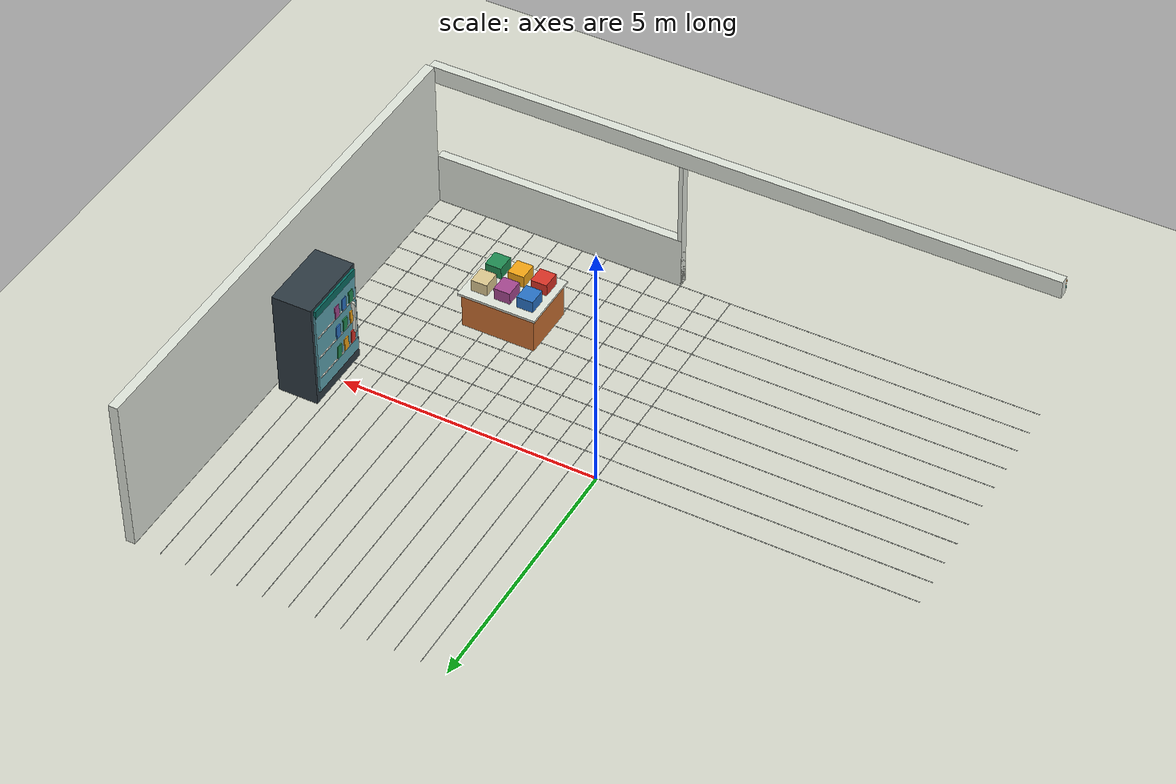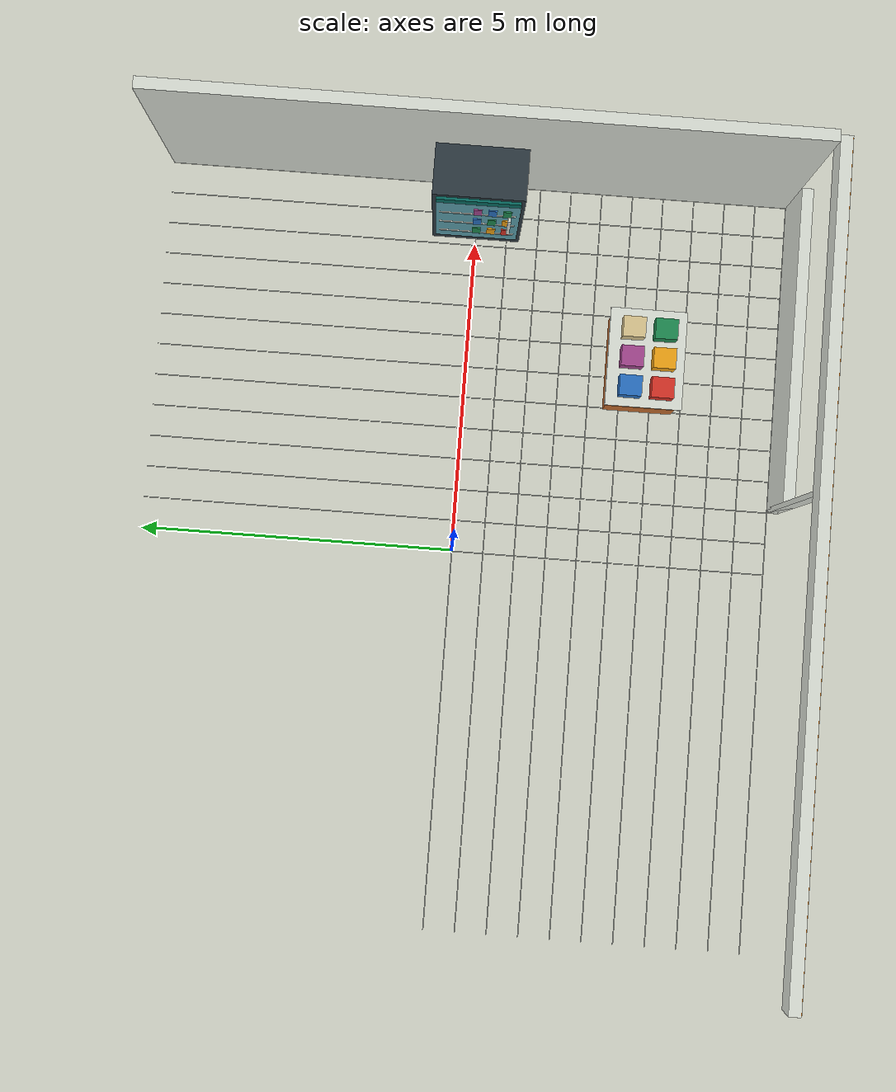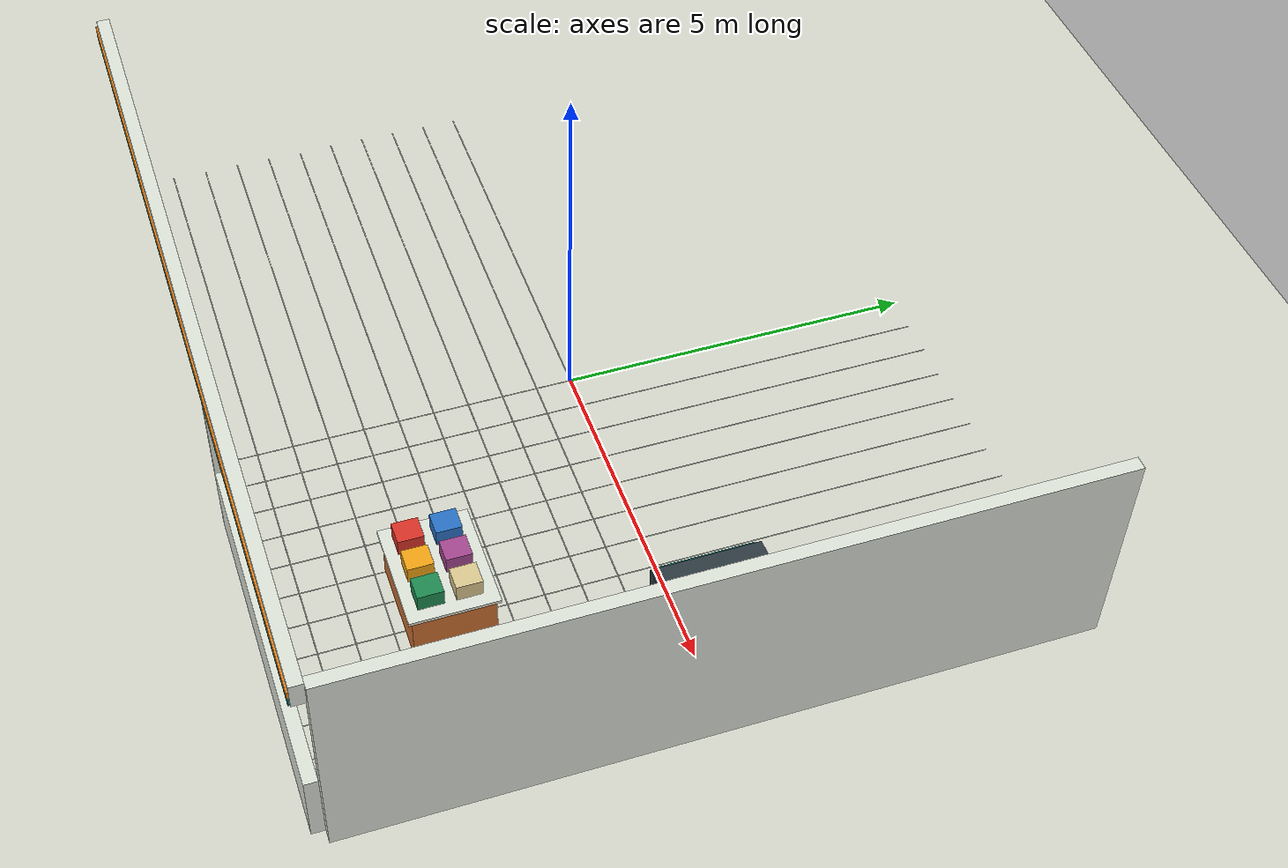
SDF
<sdf version="1.6">
 <world name="convenience_store">
  <model name="ground_plane">
   <static>true</static>
   <link name="ground_link">
    <collision name="ground_collision">
     <geometry><plane><normal>0 0 1</normal><size>100 100</size></plane></geometry>
     <surface><friction><ode><mu>1.0</mu><mu2>1.0</mu2></ode></friction></surface>
    </collision>
    <visual name="ground_visual">
     <geometry><plane><normal>0 0 1</normal><size>100 100</size></plane></geometry>
     <material><ambient>.84 .85 .80 1</ambient><diffuse>.84 .85 .80 1</diffuse></material>
    </visual>
   </link>
  </model>
  <model name="store_wall_east">
   <static>true</static>
   <pose>6.09 0 1.55 0 0 0</pose>
   <link name="body">
    <collision name="body_collision">
     <geometry><box><size>0.18 10 3.1</size></box></geometry>
     <surface><friction><ode><mu>.8</mu><mu2>.8</mu2></ode></friction></surface>
    </collision>
    <visual name="body_visual">
     <geometry><box><size>0.18 10 3.1</size></box></geometry>
     <material><ambient>.88 .90 .86 1</ambient><diffuse>.88 .90 .86 1</diffuse></material>
    </visual>
   </link>
  </model>
  <model name="store_wall_front_right">
   <static>true</static>
   <pose>3.5 -5.09 0.525 0 0 0</pose>
   <link name="body">
    <collision name="body_collision">
     <geometry><box><size>5 0.18 1.05</size></box></geometry>
     <surface><friction><ode><mu>.8</mu><mu2>.8</mu2></ode></friction></surface>
    </collision>
    <visual name="body_visual">
     <geometry><box><size>5 0.18 1.05</size></box></geometry>
     <material><ambient>.88 .90 .86 1</ambient><diffuse>.88 .90 .86 1</diffuse></material>
    </visual>
   </link>
  </model>
  <model name="store_wall_entry_header">
   <static>true</static>
   <pose>0 -5.09 2.925 0 0 0</pose>
   <link name="body">
    <collision name="body_collision">
     <geometry><box><size>12.2 0.18 0.35</size></box></geometry>
     <surface><friction><ode><mu>.8</mu><mu2>.8</mu2></ode></friction></surface>
    </collision>
    <visual name="body_visual">
     <geometry><box><size>12.2 0.18 0.35</size></box></geometry>
     <material><ambient>.88 .90 .86 1</ambient><diffuse>.88 .90 .86 1</diffuse></material>
    </visual>
   </link>
  </model>
  <model name="store_wall_entry_post_right">
   <static>true</static>
   <pose>1.04 -5.09 1.375 0 0 0</pose>
   <link name="body">
    <collision name="body_collision">
     <geometry><box><size>0.08 0.18 2.75</size></box></geometry>
     <surface><friction><ode><mu>.8</mu><mu2>.8</mu2></ode></friction></surface>
    </collision>
    <visual name="body_visual">
     <geometry><box><size>0.08 0.18 2.75</size></box></geometry>
     <material><ambient>.88 .90 .86 1</ambient><diffuse>.88 .90 .86 1</diffuse></material>
    </visual>
   </link>
  </model>
  <model name="front_fascia_0">
   <static>true</static>
   <pose>0 -5.195 2.83 0 0 0</pose>
   <link name="body">
    <visual name="body_visual">
     <geometry><box><size>12.2 0.025 0.1</size></box></geometry>
     <material><ambient>.03 .43 .39 1</ambient><diffuse>.03 .43 .39 1</diffuse></material>
    </visual>
   </link>
  </model>
  <model name="front_fascia_1">
   <static>true</static>
   <pose>0 -5.195 2.96 0 0 0</pose>
   <link name="body">
    <visual name="body_visual">
     <geometry><box><size>12.2 0.025 0.1</size></box></geometry>
     <material><ambient>.96 .54 .10 1</ambient><diffuse>.96 .54 .10 1</diffuse></material>
    </visual>
   </link>
  </model>
  <model name="tile_x_12">
   <static>true</static>
   <pose>0.0 0 0.001 0 0 0</pose>
   <link name="body">
    <visual name="body_visual">
     <geometry><box><size>0.012 10 0.001</size></box></geometry>
     <material><ambient>.63 .65 .63 1</ambient><diffuse>.63 .65 .63 1</diffuse></material>
    </visual>
   </link>
  </model>
  <model name="tile_x_13">
   <static>true</static>
   <pose>0.5 0 0.001 0 0 0</pose>
   <link name="body">
    <visual name="body_visual">
     <geometry><box><size>0.012 10 0.001</size></box></geometry>
     <material><ambient>.63 .65 .63 1</ambient><diffuse>.63 .65 .63 1</diffuse></material>
    </visual>
   </link>
  </model>
  <model name="tile_x_14">
   <static>true</static>
   <pose>1.0 0 0.001 0 0 0</pose>
   <link name="body">
    <visual name="body_visual">
     <geometry><box><size>0.012 10 0.001</size></box></geometry>
     <material><ambient>.63 .65 .63 1</ambient><diffuse>.63 .65 .63 1</diffuse></material>
    </visual>
   </link>
  </model>
  <model name="tile_x_15">
   <static>true</static>
   <pose>1.5 0 0.001 0 0 0</pose>
   <link name="body">
    <visual name="body_visual">
     <geometry><box><size>0.012 10 0.001</size></box></geometry>
     <material><ambient>.63 .65 .63 1</ambient><diffuse>.63 .65 .63 1</diffuse></material>
    </visual>
   </link>
  </model>
  <model name="tile_x_16">
   <static>true</static>
   <pose>2.0 0 0.001 0 0 0</pose>
   <link name="body">
    <visual name="body_visual">
     <geometry><box><size>0.012 10 0.001</size></box></geometry>
     <material><ambient>.63 .65 .63 1</ambient><diffuse>.63 .65 .63 1</diffuse></material>
    </visual>
   </link>
  </model>
  <model name="tile_x_17">
   <static>true</static>
   <pose>2.5 0 0.001 0 0 0</pose>
   <link name="body">
    <visual name="body_visual">
     <geometry><box><size>0.012 10 0.001</size></box></geometry>
     <material><ambient>.63 .65 .63 1</ambient><diffuse>.63 .65 .63 1</diffuse></material>
    </visual>
   </link>
  </model>
  <model name="tile_x_18">
   <static>true</static>
   <pose>3.0 0 0.001 0 0 0</pose>
   <link name="body">
    <visual name="body_visual">
     <geometry><box><size>0.012 10 0.001</size></box></geometry>
     <material><ambient>.63 .65 .63 1</ambient><diffuse>.63 .65 .63 1</diffuse></material>
    </visual>
   </link>
  </model>
  <model name="tile_x_19">
   <static>true</static>
   <pose>3.5 0 0.001 0 0 0</pose>
   <link name="body">
    <visual name="body_visual">
     <geometry><box><size>0.012 10 0.001</size></box></geometry>
     <material><ambient>.63 .65 .63 1</ambient><diffuse>.63 .65 .63 1</diffuse></material>
    </visual>
   </link>
  </model>
  <model name="tile_x_20">
   <static>true</static>
   <pose>4.0 0 0.001 0 0 0</pose>
   <link name="body">
    <visual name="body_visual">
     <geometry><box><size>0.012 10 0.001</size></box></geometry>
     <material><ambient>.63 .65 .63 1</ambient><diffuse>.63 .65 .63 1</diffuse></material>
    </visual>
   </link>
  </model>
  <model name="tile_x_21">
   <static>true</static>
   <pose>4.5 0 0.001 0 0 0</pose>
   <link name="body">
    <visual name="body_visual">
     <geometry><box><size>0.012 10 0.001</size></box></geometry>
     <material><ambient>.63 .65 .63 1</ambient><diffuse>.63 .65 .63 1</diffuse></material>
    </visual>
   </link>
  </model>
  <model name="tile_x_22">
   <static>true</static>
   <pose>5.0 0 0.001 0 0 0</pose>
   <link name="body">
    <visual name="body_visual">
     <geometry><box><size>0.012 10 0.001</size></box></geometry>
     <material><ambient>.63 .65 .63 1</ambient><diffuse>.63 .65 .63 1</diffuse></material>
    </visual>
   </link>
  </model>
  <model name="tile_x_23">
   <static>true</static>
   <pose>5.5 0 0.001 0 0 0</pose>
   <link name="body">
    <visual name="body_visual">
     <geometry><box><size>0.012 10 0.001</size></box></geometry>
     <material><ambient>.63 .65 .63 1</ambient><diffuse>.63 .65 .63 1</diffuse></material>
    </visual>
   </link>
  </model>
  <model name="tile_x_24">
   <static>true</static>
   <pose>6.0 0 0.001 0 0 0</pose>
   <link name="body">
    <visual name="body_visual">
     <geometry><box><size>0.012 10 0.001</size></box></geometry>
     <material><ambient>.63 .65 .63 1</ambient><diffuse>.63 .65 .63 1</diffuse></material>
    </visual>
   </link>
  </model>
  <model name="tile_y_0">
   <static>true</static>
   <pose>0 -5.0 0.001 0 0 0</pose>
   <link name="body">
    <visual name="body_visual">
     <geometry><box><size>12 0.012 0.001</size></box></geometry>
     <material><ambient>.63 .65 .63 1</ambient><diffuse>.63 .65 .63 1</diffuse></material>
    </visual>
   </link>
  </model>
  <model name="tile_y_1">
   <static>true</static>
   <pose>0 -4.5 0.001 0 0 0</pose>
   <link name="body">
    <visual name="body_visual">
     <geometry><box><size>12 0.012 0.001</size></box></geometry>
     <material><ambient>.63 .65 .63 1</ambient><diffuse>.63 .65 .63 1</diffuse></material>
    </visual>
   </link>
  </model>
  <model name="tile_y_2">
   <static>true</static>
   <pose>0 -4.0 0.001 0 0 0</pose>
   <link name="body">
    <visual name="body_visual">
     <geometry><box><size>12 0.012 0.001</size></box></geometry>
     <material><ambient>.63 .65 .63 1</ambient><diffuse>.63 .65 .63 1</diffuse></material>
    </visual>
   </link>
  </model>
  <model name="tile_y_3">
   <static>true</static>
   <pose>0 -3.5 0.001 0 0 0</pose>
   <link name="body">
    <visual name="body_visual">
     <geometry><box><size>12 0.012 0.001</size></box></geometry>
     <material><ambient>.63 .65 .63 1</ambient><diffuse>.63 .65 .63 1</diffuse></material>
    </visual>
   </link>
  </model>
  <model name="tile_y_4">
   <static>true</static>
   <pose>0 -3.0 0.001 0 0 0</pose>
   <link name="body">
    <visual name="body_visual">
     <geometry><box><size>12 0.012 0.001</size></box></geometry>
     <material><ambient>.63 .65 .63 1</ambient><diffuse>.63 .65 .63 1</diffuse></material>
    </visual>
   </link>
  </model>
  <model name="tile_y_5">
   <static>true</static>
   <pose>0 -2.5 0.001 0 0 0</pose>
   <link name="body">
    <visual name="body_visual">
     <geometry><box><size>12 0.012 0.001</size></box></geometry>
     <material><ambient>.63 .65 .63 1</ambient><diffuse>.63 .65 .63 1</diffuse></material>
    </visual>
   </link>
  </model>
  <model name="tile_y_6">
   <static>true</static>
   <pose>0 -2.0 0.001 0 0 0</pose>
   <link name="body">
    <visual name="body_visual">
     <geometry><box><size>12 0.012 0.001</size></box></geometry>
     <material><ambient>.63 .65 .63 1</ambient><diffuse>.63 .65 .63 1</diffuse></material>
    </visual>
   </link>
  </model>
  <model name="tile_y_7">
   <static>true</static>
   <pose>0 -1.5 0.001 0 0 0</pose>
   <link name="body">
    <visual name="body_visual">
     <geometry><box><size>12 0.012 0.001</size></box></geometry>
     <material><ambient>.63 .65 .63 1</ambient><diffuse>.63 .65 .63 1</diffuse></material>
    </visual>
   </link>
  </model>
  <model name="tile_y_8">
   <static>true</static>
   <pose>0 -1.0 0.001 0 0 0</pose>
   <link name="body">
    <visual name="body_visual">
     <geometry><box><size>12 0.012 0.001</size></box></geometry>
     <material><ambient>.63 .65 .63 1</ambient><diffuse>.63 .65 .63 1</diffuse></material>
    </visual>
   </link>
  </model>
  <model name="tile_y_9">
   <static>true</static>
   <pose>0 -0.5 0.001 0 0 0</pose>
   <link name="body">
    <visual name="body_visual">
     <geometry><box><size>12 0.012 0.001</size></box></geometry>
     <material><ambient>.63 .65 .63 1</ambient><diffuse>.63 .65 .63 1</diffuse></material>
    </visual>
   </link>
  </model>
  <model name="tile_y_10">
   <static>true</static>
   <pose>0 0.0 0.001 0 0 0</pose>
   <link name="body">
    <visual name="body_visual">
     <geometry><box><size>12 0.012 0.001</size></box></geometry>
     <material><ambient>.63 .65 .63 1</ambient><diffuse>.63 .65 .63 1</diffuse></material>
    </visual>
   </link>
  </model>
  <model name="fridge_0_body">
   <static>true</static>
   <pose>5.5 0.0 1.075 0 0 0</pose>
   <link name="body">
    <collision name="body_collision">
     <geometry><box><size>0.78 1.4 2.15</size></box></geometry>
     <surface><friction><ode><mu>.8</mu><mu2>.8</mu2></ode></friction></surface>
    </collision>
    <visual name="body_visual">
     <geometry><box><size>0.78 1.4 2.15</size></box></geometry>
     <material><ambient>.18 .23 .26 1</ambient><diffuse>.18 .23 .26 1</diffuse></material>
    </visual>
   </link>
  </model>
  <model name="fridge_0_door">
   <static>true</static>
   <pose>5.09 0.0 1.12 0 0 0</pose>
   <link name="body">
    <collision name="body_collision">
     <geometry><box><size>0.035 1.28 1.74</size></box></geometry>
     <surface><friction><ode><mu>.8</mu><mu2>.8</mu2></ode></friction></surface>
    </collision>
    <visual name="body_visual">
     <geometry><box><size>0.035 1.28 1.74</size></box></geometry>
     <material><ambient>.37 .65 .70 1</ambient><diffuse>.37 .65 .70 1</diffuse></material>
    </visual>
   </link>
  </model>
  <model name="fridge_0_handle">
   <static>true</static>
   <pose>5.03 -0.49 1.12 0 0 0</pose>
   <link name="body">
    <collision name="body_collision">
     <geometry><box><size>0.07 0.045 0.66</size></box></geometry>
     <surface><friction><ode><mu>.8</mu><mu2>.8</mu2></ode></friction></surface>
    </collision>
    <visual name="body_visual">
     <geometry><box><size>0.07 0.045 0.66</size></box></geometry>
     <material><ambient>.88 .90 .86 1</ambient><diffuse>.88 .90 .86 1</diffuse></material>
    </visual>
   </link>
  </model>
  <model name="fridge_0_header">
   <static>true</static>
   <pose>5.08 0.0 2.02 0 0 0</pose>
   <link name="body">
    <visual name="body_visual">
     <geometry><box><size>0.04 1.27 0.16</size></box></geometry>
     <material><ambient>.03 .43 .39 1</ambient><diffuse>.03 .43 .39 1</diffuse></material>
    </visual>
   </link>
  </model>
  <model name="fridge_0_tray_0">
   <static>true</static>
   <pose>5.064 0.0 0.55 0 0 0</pose>
   <link name="body">
    <visual name="body_visual">
     <geometry><box><size>0.015 1.17 0.025</size></box></geometry>
     <material><ambient>.88 .90 .86 1</ambient><diffuse>.88 .90 .86 1</diffuse></material>
    </visual>
   </link>
  </model>
  <model name="fridge_0_drink_0_0">
   <static>true</static>
   <pose>5.05 -0.45 0.7 0 0 0</pose>
   <link name="body">
    <visual name="body_visual">
     <geometry><box><size>0.018 0.13 0.26</size></box></geometry>
     <material><ambient>.86 .20 .15 1</ambient><diffuse>.86 .20 .15 1</diffuse></material>
    </visual>
   </link>
  </model>
  <model name="fridge_0_drink_0_1">
   <static>true</static>
   <pose>5.05 -0.225 0.7 0 0 0</pose>
   <link name="body">
    <visual name="body_visual">
     <geometry><box><size>0.018 0.13 0.26</size></box></geometry>
     <material><ambient>.96 .65 .08 1</ambient><diffuse>.96 .65 .08 1</diffuse></material>
    </visual>
   </link>
  </model>
  <model name="fridge_0_drink_0_2">
   <static>true</static>
   <pose>5.05 0.0 0.7 0 0 0</pose>
   <link name="body">
    <visual name="body_visual">
     <geometry><box><size>0.018 0.13 0.26</size></box></geometry>
     <material><ambient>.12 .55 .32 1</ambient><diffuse>.12 .55 .32 1</diffuse></material>
    </visual>
   </link>
  </model>
  <model name="fridge_0_tray_1">
   <static>true</static>
   <pose>5.064 0.0 1.01 0 0 0</pose>
   <link name="body">
    <visual name="body_visual">
     <geometry><box><size>0.015 1.17 0.025</size></box></geometry>
     <material><ambient>.88 .90 .86 1</ambient><diffuse>.88 .90 .86 1</diffuse></material>
    </visual>
   </link>
  </model>
  <model name="fridge_0_drink_1_0">
   <static>true</static>
   <pose>5.05 -0.45 1.16 0 0 0</pose>
   <link name="body">
    <visual name="body_visual">
     <geometry><box><size>0.018 0.13 0.26</size></box></geometry>
     <material><ambient>.96 .65 .08 1</ambient><diffuse>.96 .65 .08 1</diffuse></material>
    </visual>
   </link>
  </model>
  <model name="fridge_0_drink_1_1">
   <static>true</static>
   <pose>5.05 -0.225 1.16 0 0 0</pose>
   <link name="body">
    <visual name="body_visual">
     <geometry><box><size>0.018 0.13 0.26</size></box></geometry>
     <material><ambient>.12 .55 .32 1</ambient><diffuse>.12 .55 .32 1</diffuse></material>
    </visual>
   </link>
  </model>
  <model name="fridge_0_drink_1_2">
   <static>true</static>
   <pose>5.05 0.0 1.16 0 0 0</pose>
   <link name="body">
    <visual name="body_visual">
     <geometry><box><size>0.018 0.13 0.26</size></box></geometry>
     <material><ambient>.16 .45 .78 1</ambient><diffuse>.16 .45 .78 1</diffuse></material>
    </visual>
   </link>
  </model>
  <model name="fridge_0_tray_2">
   <static>true</static>
   <pose>5.064 0.0 1.4700000000000002 0 0 0</pose>
   <link name="body">
    <visual name="body_visual">
     <geometry><box><size>0.015 1.17 0.025</size></box></geometry>
     <material><ambient>.88 .90 .86 1</ambient><diffuse>.88 .90 .86 1</diffuse></material>
    </visual>
   </link>
  </model>
  <model name="fridge_0_drink_2_0">
   <static>true</static>
   <pose>5.05 -0.45 1.62 0 0 0</pose>
   <link name="body">
    <visual name="body_visual">
     <geometry><box><size>0.018 0.13 0.26</size></box></geometry>
     <material><ambient>.12 .55 .32 1</ambient><diffuse>.12 .55 .32 1</diffuse></material>
    </visual>
   </link>
  </model>
  <model name="fridge_0_drink_2_1">
   <static>true</static>
   <pose>5.05 -0.225 1.62 0 0 0</pose>
   <link name="body">
    <visual name="body_visual">
     <geometry><box><size>0.018 0.13 0.26</size></box></geometry>
     <material><ambient>.16 .45 .78 1</ambient><diffuse>.16 .45 .78 1</diffuse></material>
    </visual>
   </link>
  </model>
  <model name="fridge_0_drink_2_2">
   <static>true</static>
   <pose>5.05 0.0 1.62 0 0 0</pose>
   <link name="body">
    <visual name="body_visual">
     <geometry><box><size>0.018 0.13 0.26</size></box></geometry>
     <material><ambient>.65 .28 .57 1</ambient><diffuse>.65 .28 .57 1</diffuse></material>
    </visual>
   </link>
  </model>
  <model name="promo_island">
   <static>true</static>
   <pose>3.2 -2.8 0.36 0 0 0</pose>
   <link name="body">
    <collision name="body_collision">
     <geometry><box><size>1.45 1.1 0.72</size></box></geometry>
     <surface><friction><ode><mu>.8</mu><mu2>.8</mu2></ode></friction></surface>
    </collision>
    <visual name="body_visual">
     <geometry><box><size>1.45 1.1 0.72</size></box></geometry>
     <material><ambient>.80 .44 .19 1</ambient><diffuse>.80 .44 .19 1</diffuse></material>
    </visual>
   </link>
  </model>
  <model name="promo_top">
   <static>true</static>
   <pose>3.2 -2.8 0.7425 0 0 0</pose>
   <link name="body">
    <collision name="body_collision">
     <geometry><box><size>1.55 1.2 0.045</size></box></geometry>
     <surface><friction><ode><mu>.8</mu><mu2>.8</mu2></ode></friction></surface>
    </collision>
    <visual name="body_visual">
     <geometry><box><size>1.55 1.2 0.045</size></box></geometry>
     <material><ambient>.88 .90 .86 1</ambient><diffuse>.88 .90 .86 1</diffuse></material>
    </visual>
   </link>
  </model>
  <model name="promo_carton_0">
   <static>true</static>
   <pose>2.72 -3.06 0.885 0 0 0</pose>
   <link name="body">
    <collision name="body_collision">
     <geometry><box><size>0.32 0.35 0.24</size></box></geometry>
     <surface><friction><ode><mu>.8</mu><mu2>.8</mu2></ode></friction></surface>
    </collision>
    <visual name="body_visual">
     <geometry><box><size>0.32 0.35 0.24</size></box></geometry>
     <material><ambient>.86 .20 .15 1</ambient><diffuse>.86 .20 .15 1</diffuse></material>
    </visual>
   </link>
  </model>
  <model name="promo_carton_1">
   <static>true</static>
   <pose>3.18 -3.06 0.885 0 0 0</pose>
   <link name="body">
    <collision name="body_collision">
     <geometry><box><size>0.32 0.35 0.24</size></box></geometry>
     <surface><friction><ode><mu>.8</mu><mu2>.8</mu2></ode></friction></surface>
    </collision>
    <visual name="body_visual">
     <geometry><box><size>0.32 0.35 0.24</size></box></geometry>
     <material><ambient>.96 .65 .08 1</ambient><diffuse>.96 .65 .08 1</diffuse></material>
    </visual>
   </link>
  </model>
  <model name="promo_carton_2">
   <static>true</static>
   <pose>3.64 -3.06 0.885 0 0 0</pose>
   <link name="body">
    <collision name="body_collision">
     <geometry><box><size>0.32 0.35 0.24</size></box></geometry>
     <surface><friction><ode><mu>.8</mu><mu2>.8</mu2></ode></friction></surface>
    </collision>
    <visual name="body_visual">
     <geometry><box><size>0.32 0.35 0.24</size></box></geometry>
     <material><ambient>.12 .55 .32 1</ambient><diffuse>.12 .55 .32 1</diffuse></material>
    </visual>
   </link>
  </model>
  <model name="promo_carton_3">
   <static>true</static>
   <pose>2.72 -2.56 0.885 0 0 0</pose>
   <link name="body">
    <collision name="body_collision">
     <geometry><box><size>0.32 0.35 0.24</size></box></geometry>
     <surface><friction><ode><mu>.8</mu><mu2>.8</mu2></ode></friction></surface>
    </collision>
    <visual name="body_visual">
     <geometry><box><size>0.32 0.35 0.24</size></box></geometry>
     <material><ambient>.16 .45 .78 1</ambient><diffuse>.16 .45 .78 1</diffuse></material>
    </visual>
   </link>
  </model>
  <model name="promo_carton_4">
   <static>true</static>
   <pose>3.18 -2.56 0.885 0 0 0</pose>
   <link name="body">
    <collision name="body_collision">
     <geometry><box><size>0.32 0.35 0.24</size></box></geometry>
     <surface><friction><ode><mu>.8</mu><mu2>.8</mu2></ode></friction></surface>
    </collision>
    <visual name="body_visual">
     <geometry><box><size>0.32 0.35 0.24</size></box></geometry>
     <material><ambient>.65 .28 .57 1</ambient><diffuse>.65 .28 .57 1</diffuse></material>
    </visual>
   </link>
  </model>
  <model name="promo_carton_5">
   <static>true</static>
   <pose>3.64 -2.56 0.885 0 0 0</pose>
   <link name="body">
    <collision name="body_collision">
     <geometry><box><size>0.32 0.35 0.24</size></box></geometry>
     <surface><friction><ode><mu>.8</mu><mu2>.8</mu2></ode></friction></surface>
    </collision>
    <visual name="body_visual">
     <geometry><box><size>0.32 0.35 0.24</size></box></geometry>
     <material><ambient>.87 .79 .57 1</ambient><diffuse>.87 .79 .57 1</diffuse></material>
    </visual>
   </link>
  </model>
 </world>
</sdf>
